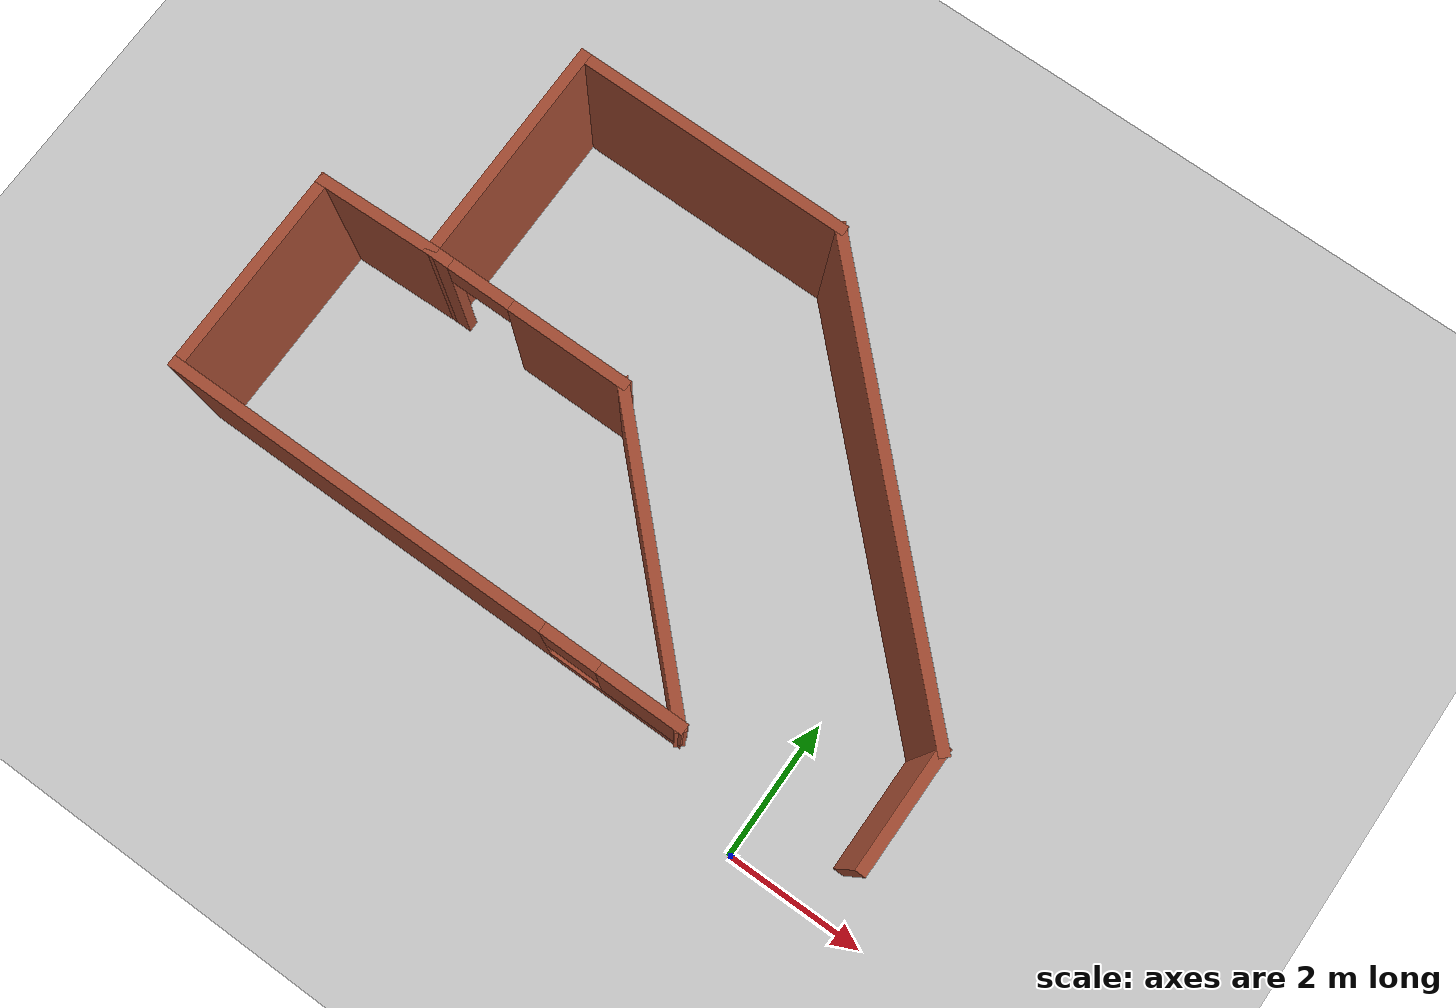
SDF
<sdf version="1.6">
 <world name="default">
  <model name="ground_plane">
   <static>1</static>
   <link name="link">
    <collision name="collision">
     <geometry><plane><normal>0 0 1</normal><size>100 100</size></plane></geometry>
     <surface><friction><ode><mu>100</mu><mu2>50</mu2></ode></friction></surface>
    </collision>
    <visual name="visual">
     <cast_shadows>0</cast_shadows>
     <geometry><plane><normal>0 0 1</normal><size>100 100</size></plane></geometry>
     <material>
      <script><uri>file://media/materials/scripts/gazebo.material</uri><name>Gazebo/Grey</name></script>
     </material>
    </visual>
   </link>
  </model>
  <model name="building2">
   <pose>-3.71805 3.77176 0 0 -0 0</pose>
   <link name="Wall_0">
    <collision name="Wall_0_Collision">
     <geometry><box><size>3 0.15 2.5</size></box></geometry>
     <pose>0 0 1.25 0 -0 0</pose>
    </collision>
    <visual name="Wall_0_Visual">
     <pose>0 0 1.25 0 -0 0</pose>
     <geometry><box><size>3 0.15 2.5</size></box></geometry>
     <material>
      <script><uri>file://media/materials/scripts/gazebo.material</uri><name>Gazebo/Bricks</name></script>
      <ambient>1 1 1 1</ambient>
     </material>
     <meta><layer>0</layer></meta>
    </visual>
    <pose>-4.98489 -1.54461 0 0 0 -1.5708</pose>
   </link>
   <link name="Wall_1">
    <pose>-1.3099 -2.96961 0 0 -0 0</pose>
    <visual name="Wall_1_Visual_0">
     <pose>-1.00946 0 1.25 0 -0 0</pose>
     <geometry><box><size>5.48109 0.15 2.5</size></box></geometry>
     <material>
      <script><uri>file://media/materials/scripts/gazebo.material</uri><name>Gazebo/Bricks</name></script>
      <ambient>1 1 1 1</ambient>
     </material>
     <meta><layer>0</layer></meta>
    </visual>
    <collision name="Wall_1_Collision_0">
     <geometry><box><size>5.48109 0.15 2.5</size></box></geometry>
     <pose>-1.00946 0 1.25 0 -0 0</pose>
    </collision>
    <visual name="Wall_1_Visual_1">
     <pose>2.74054 0 0.25 0 -0 0</pose>
     <geometry><box><size>2.01891 0.15 0.5</size></box></geometry>
     <material>
      <script><uri>file://media/materials/scripts/gazebo.material</uri><name>Gazebo/Bricks</name></script>
      <ambient>1 1 1 1</ambient>
     </material>
     <meta><layer>0</layer></meta>
    </visual>
    <collision name="Wall_1_Collision_1">
     <geometry><box><size>2.01891 0.15 0.5</size></box></geometry>
     <pose>2.74054 0 0.25 0 -0 0</pose>
    </collision>
    <visual name="Wall_1_Visual_2">
     <pose>3.14054 0 1.5 0 -0 0</pose>
     <geometry><box><size>1.21891 0.15 2</size></box></geometry>
     <material>
      <script><uri>file://media/materials/scripts/gazebo.material</uri><name>Gazebo/Bricks</name></script>
      <ambient>1 1 1 1</ambient>
     </material>
     <meta><layer>0</layer></meta>
    </visual>
    <collision name="Wall_1_Collision_2">
     <geometry><box><size>1.21891 0.15 2</size></box></geometry>
     <pose>3.14054 0 1.5 0 -0 0</pose>
    </collision>
    <visual name="Wall_1_Visual_3">
     <pose>2.13109 0 1.9 0 -0 0</pose>
     <geometry><box><size>0.8 0.15 1.2</size></box></geometry>
     <material>
      <script><uri>file://media/materials/scripts/gazebo.material</uri><name>Gazebo/Bricks</name></script>
      <ambient>1 1 1 1</ambient>
     </material>
     <meta><layer>0</layer></meta>
    </visual>
    <collision name="Wall_1_Collision_3">
     <geometry><box><size>0.8 0.15 1.2</size></box></geometry>
     <pose>2.13109 0 1.9 0 -0 0</pose>
    </collision>
   </link>
   <link name="Wall_2">
    <collision name="Wall_2_Collision">
     <geometry><box><size>4.25 0.15 2.5</size></box></geometry>
     <pose>0 0 1.25 0 -0 0</pose>
    </collision>
    <visual name="Wall_2_Visual">
     <pose>0 0 1.25 0 -0 0</pose>
     <geometry><box><size>4.25 0.15 2.5</size></box></geometry>
     <material>
      <script><uri>file://media/materials/scripts/gazebo.material</uri><name>Gazebo/Bricks</name></script>
      <ambient>1 1 1 1</ambient>
     </material>
     <meta><layer>0</layer></meta>
    </visual>
    <pose>0.915536 -1.52004 0 0 -0 2.35619</pose>
   </link>
   <link name="Wall_3">
    <pose>-1.95903 -0.070469 0 0 -0 3.14159</pose>
    <visual name="Wall_3_Visual_0">
     <pose>-0.634678 0 1.25 0 -0 0</pose>
     <geometry><box><size>1.73064 0.15 2.5</size></box></geometry>
     <material>
      <script><uri>file://media/materials/scripts/gazebo.material</uri><name>Gazebo/Bricks</name></script>
      <ambient>1 1 1 1</ambient>
     </material>
     <meta><layer>0</layer></meta>
    </visual>
    <collision name="Wall_3_Collision_0">
     <geometry><box><size>1.73064 0.15 2.5</size></box></geometry>
     <pose>-0.634678 0 1.25 0 -0 0</pose>
    </collision>
    <visual name="Wall_3_Visual_1">
     <pose>1.31532 0 1.25 0 -0 0</pose>
     <geometry><box><size>0.369355 0.15 2.5</size></box></geometry>
     <material>
      <script><uri>file://media/materials/scripts/gazebo.material</uri><name>Gazebo/Bricks</name></script>
      <ambient>1 1 1 1</ambient>
     </material>
     <meta><layer>0</layer></meta>
    </visual>
    <collision name="Wall_3_Collision_1">
     <geometry><box><size>0.369355 0.15 2.5</size></box></geometry>
     <pose>1.31532 0 1.25 0 -0 0</pose>
    </collision>
    <visual name="Wall_3_Visual_2">
     <pose>0.680645 0 2.25 0 -0 0</pose>
     <geometry><box><size>0.9 0.15 0.5</size></box></geometry>
     <material>
      <script><uri>file://media/materials/scripts/gazebo.material</uri><name>Gazebo/Bricks</name></script>
      <ambient>1 1 1 1</ambient>
     </material>
     <meta><layer>0</layer></meta>
    </visual>
    <collision name="Wall_3_Collision_2">
     <geometry><box><size>0.9 0.15 0.5</size></box></geometry>
     <pose>0.680645 0 2.25 0 -0 0</pose>
    </collision>
   </link>
   <link name="Wall_4">
    <collision name="Wall_4_Collision">
     <geometry><box><size>3.25 0.15 2.5</size></box></geometry>
     <pose>0 0 1.25 0 -0 0</pose>
    </collision>
    <visual name="Wall_4_Visual">
     <pose>0 0 1.25 0 -0 0</pose>
     <geometry><box><size>3.25 0.15 2.5</size></box></geometry>
     <material>
      <script><uri>file://media/materials/scripts/gazebo.material</uri><name>Gazebo/Bricks</name></script>
      <ambient>1 1 1 1</ambient>
     </material>
     <meta><layer>0</layer></meta>
    </visual>
    <pose>-3.38403 1.47953 0 0 -0 1.5708</pose>
   </link>
   <link name="Wall_5">
    <collision name="Wall_5_Collision">
     <geometry><box><size>4 0.15 2.5</size></box></geometry>
     <pose>0 0 1.25 0 -0 0</pose>
    </collision>
    <visual name="Wall_5_Visual">
     <pose>0 0 1.25 0 -0 0</pose>
     <geometry><box><size>4 0.15 2.5</size></box></geometry>
     <material>
      <script><uri>file://media/materials/scripts/gazebo.material</uri><name>Gazebo/Bricks</name></script>
      <ambient>1 1 1 1</ambient>
     </material>
     <meta><layer>0</layer></meta>
    </visual>
    <pose>-1.45903 3.02953 0 0 -0 0</pose>
   </link>
   <link name="Wall_6">
    <collision name="Wall_6_Collision">
     <geometry><box><size>6.5 0.15 2.5</size></box></geometry>
     <pose>0 0 1.25 0 -0 0</pose>
    </collision>
    <visual name="Wall_6_Visual">
     <pose>0 0 1.25 0 -0 0</pose>
     <geometry><box><size>6.5 0.15 2.5</size></box></geometry>
     <material>
      <script><uri>file://media/materials/scripts/gazebo.material</uri><name>Gazebo/Bricks</name></script>
      <ambient>1 1 1 1</ambient>
     </material>
     <meta><layer>0</layer></meta>
    </visual>
    <pose>2.71103 0.784467 0 0 0 -0.785398</pose>
   </link>
   <link name="Wall_7">
    <collision name="Wall_7_Collision">
     <geometry><box><size>1.75 0.15 2.5</size></box></geometry>
     <pose>0 0 1.25 0 -0 0</pose>
    </collision>
    <visual name="Wall_7_Visual">
     <pose>0 0 1.25 0 -0 0</pose>
     <geometry><box><size>1.75 0.15 2.5</size></box></geometry>
     <material>
      <script><uri>file://media/materials/scripts/gazebo.material</uri><name>Gazebo/Bricks</name></script>
      <ambient>1 1 1 1</ambient>
     </material>
     <meta><layer>0</layer></meta>
    </visual>
    <pose>4.9561 -2.2606 0 0 0 -1.5708</pose>
   </link>
   <link name="Wall_9">
    <collision name="Wall_9_Collision">
     <geometry><box><size>1.75162 0.15 2.5</size></box></geometry>
     <pose>0 0 1.25 0 -0 0</pose>
    </collision>
    <visual name="Wall_9_Visual">
     <pose>0 0 1.25 0 -0 0</pose>
     <geometry><box><size>1.75162 0.15 2.5</size></box></geometry>
     <material>
      <script><uri>file://media/materials/scripts/gazebo.material</uri><name>Gazebo/Bricks</name></script>
      <ambient>1 1 1 1</ambient>
     </material>
     <meta><layer>0</layer></meta>
    </visual>
    <pose>-4.18446 -0.095038 0 0 -0 0.030685</pose>
   </link>
   <static>1</static>
  </model>
 </world>
</sdf>
